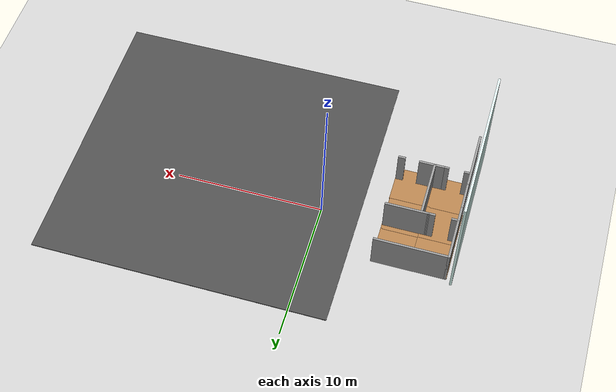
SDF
<sdf version="1.6">
 <world name="default">
  <model name="ground_plane">
   <static>1</static>
   <link name="link">
    <collision name="collision">
     <geometry><plane><normal>0 0 1</normal><size>100 100</size></plane></geometry>
     <surface>
      <contact><collide_bitmask>65535</collide_bitmask></contact>
      <friction><ode><mu>100</mu><mu2>50</mu2></ode></friction>
     </surface>
    </collision>
    <visual name="visual">
     <cast_shadows>0</cast_shadows>
     <geometry><plane><normal>0 0 1</normal><size>100 100</size></plane></geometry>
     <material>
      <script><uri>file://media/materials/scripts/gazebo.material</uri><name>Gazebo/Grey</name></script>
     </material>
    </visual>
   </link>
  </model>
  <model name="world_frame">
   <link name="Wall_140">
    <pose>-23.3896 0.057 0 0 -0 1.5708</pose>
    <visual name="Wall_140_Visual_0">
     <pose>-3.01696 0 1.25 0 -0 0</pose>
     <geometry><box><size>4.21607 0.15 2.5</size></box></geometry>
     <material>
      <script><uri>file://media/materials/scripts/gazebo.material</uri><name>Gazebo/Grey</name></script>
      <ambient>1 1 1 1</ambient>
      <shader type="pixel"/>
      <diffuse>0.7 0.7 0.7 1</diffuse>
      <specular>0.01 0.01 0.01 1</specular>
      <emissive>0 0 0 1</emissive>
     </material>
     <meta><layer>0</layer></meta>
    </visual>
    <visual name="Wall_140_Visual_2">
     <pose>3.07155 0 1.85 0 -0 0</pose>
     <geometry><box><size>4.1069 0.15 1.3</size></box></geometry>
     <material>
      <script><uri>file://media/materials/scripts/gazebo.material</uri><name>Gazebo/Grey</name></script>
      <ambient>1 1 1 1</ambient>
      <shader type="pixel"/>
      <diffuse>0.7 0.7 0.7 1</diffuse>
      <specular>0.01 0.01 0.01 1</specular>
      <emissive>0 0 0 1</emissive>
     </material>
     <meta><layer>0</layer></meta>
    </visual>
    <visual name="Wall_140_Visual_1">
     <pose>2.10804 0 0.6 0 -0 0</pose>
     <geometry><box><size>6.03393 0.15 1.2</size></box></geometry>
     <material>
      <script><uri>file://media/materials/scripts/gazebo.material</uri><name>Gazebo/Grey</name></script>
      <ambient>1 1 1 1</ambient>
      <shader type="pixel"/>
      <diffuse>0.7 0.7 0.7 1</diffuse>
      <specular>0.01 0.01 0.01 1</specular>
      <emissive>0 0 0 1</emissive>
     </material>
     <meta><layer>0</layer></meta>
    </visual>
    <visual name="Wall_140_Visual_3">
     <pose>0.054585 0 2.25 0 -0 0</pose>
     <geometry><box><size>1.92702 0.15 0.5</size></box></geometry>
     <material>
      <script><uri>file://media/materials/scripts/gazebo.material</uri><name>Gazebo/Grey</name></script>
      <ambient>1 1 1 1</ambient>
      <shader type="pixel"/>
      <diffuse>0.7 0.7 0.7 1</diffuse>
      <specular>0.01 0.01 0.01 1</specular>
      <emissive>0 0 0 1</emissive>
     </material>
     <meta><layer>0</layer></meta>
    </visual>
    <collision name="Wall_140_Collision_0">
     <pose>-3.01696 0 1.25 0 -0 0</pose>
     <geometry><box><size>4.21607 0.15 2.5</size></box></geometry>
     <surface>
      <friction>
       <ode><mu>1</mu><mu2>1</mu2><fdir1>0 0 0</fdir1><slip1>0</slip1><slip2>0</slip2></ode>
       <torsional>
        <coefficient>1</coefficient>
        <patch_radius>0</patch_radius>
        <surface_radius>0</surface_radius>
        <use_patch_radius>1</use_patch_radius>
        <ode><slip>0</slip></ode>
       </torsional>
      </friction>
      <bounce><restitution_coefficient>0</restitution_coefficient><threshold>1e+06</threshold></bounce>
      <contact>
       <collide_without_contact>0</collide_without_contact>
       <collide_without_contact_bitmask>1</collide_without_contact_bitmask>
       <collide_bitmask>1</collide_bitmask>
       <ode>
        <soft_cfm>0</soft_cfm>
        <soft_erp>0.2</soft_erp>
        <kp>1e+13</kp>
        <kd>1</kd>
        <max_vel>0.01</max_vel>
        <min_depth>0</min_depth>
       </ode>
       <bullet>
        <split_impulse>1</split_impulse>
        <split_impulse_penetration_threshold>-0.01</split_impulse_penetration_threshold>
        <soft_cfm>0</soft_cfm>
        <soft_erp>0.2</soft_erp>
        <kp>1e+13</kp>
        <kd>1</kd>
       </bullet>
      </contact>
     </surface>
    </collision>
    <collision name="Wall_140_Collision_1">
     <pose>2.10804 0 0.6 0 -0 0</pose>
     <geometry><box><size>6.03393 0.15 1.2</size></box></geometry>
     <surface>
      <friction>
       <ode><mu>1</mu><mu2>1</mu2><fdir1>0 0 0</fdir1><slip1>0</slip1><slip2>0</slip2></ode>
       <torsional>
        <coefficient>1</coefficient>
        <patch_radius>0</patch_radius>
        <surface_radius>0</surface_radius>
        <use_patch_radius>1</use_patch_radius>
        <ode><slip>0</slip></ode>
       </torsional>
      </friction>
      <bounce><restitution_coefficient>0</restitution_coefficient><threshold>1e+06</threshold></bounce>
      <contact>
       <collide_without_contact>0</collide_without_contact>
       <collide_without_contact_bitmask>1</collide_without_contact_bitmask>
       <collide_bitmask>1</collide_bitmask>
       <ode>
        <soft_cfm>0</soft_cfm>
        <soft_erp>0.2</soft_erp>
        <kp>1e+13</kp>
        <kd>1</kd>
        <max_vel>0.01</max_vel>
        <min_depth>0</min_depth>
       </ode>
       <bullet>
        <split_impulse>1</split_impulse>
        <split_impulse_penetration_threshold>-0.01</split_impulse_penetration_threshold>
        <soft_cfm>0</soft_cfm>
        <soft_erp>0.2</soft_erp>
        <kp>1e+13</kp>
        <kd>1</kd>
       </bullet>
      </contact>
     </surface>
    </collision>
    <collision name="Wall_140_Collision_2">
     <pose>3.07155 0 1.85 0 -0 0</pose>
     <geometry><box><size>4.1069 0.15 1.3</size></box></geometry>
     <surface>
      <friction>
       <ode><mu>1</mu><mu2>1</mu2><fdir1>0 0 0</fdir1><slip1>0</slip1><slip2>0</slip2></ode>
       <torsional>
        <coefficient>1</coefficient>
        <patch_radius>0</patch_radius>
        <surface_radius>0</surface_radius>
        <use_patch_radius>1</use_patch_radius>
        <ode><slip>0</slip></ode>
       </torsional>
      </friction>
      <bounce><restitution_coefficient>0</restitution_coefficient><threshold>1e+06</threshold></bounce>
      <contact>
       <collide_without_contact>0</collide_without_contact>
       <collide_without_contact_bitmask>1</collide_without_contact_bitmask>
       <collide_bitmask>1</collide_bitmask>
       <ode>
        <soft_cfm>0</soft_cfm>
        <soft_erp>0.2</soft_erp>
        <kp>1e+13</kp>
        <kd>1</kd>
        <max_vel>0.01</max_vel>
        <min_depth>0</min_depth>
       </ode>
       <bullet>
        <split_impulse>1</split_impulse>
        <split_impulse_penetration_threshold>-0.01</split_impulse_penetration_threshold>
        <soft_cfm>0</soft_cfm>
        <soft_erp>0.2</soft_erp>
        <kp>1e+13</kp>
        <kd>1</kd>
       </bullet>
      </contact>
     </surface>
    </collision>
    <collision name="Wall_140_Collision_3">
     <pose>0.054585 0 2.25 0 -0 0</pose>
     <geometry><box><size>1.92702 0.15 0.5</size></box></geometry>
     <surface>
      <friction>
       <ode><mu>1</mu><mu2>1</mu2><fdir1>0 0 0</fdir1><slip1>0</slip1><slip2>0</slip2></ode>
       <torsional>
        <coefficient>1</coefficient>
        <patch_radius>0</patch_radius>
        <surface_radius>0</surface_radius>
        <use_patch_radius>1</use_patch_radius>
        <ode><slip>0</slip></ode>
       </torsional>
      </friction>
      <bounce><restitution_coefficient>0</restitution_coefficient><threshold>1e+06</threshold></bounce>
      <contact>
       <collide_without_contact>0</collide_without_contact>
       <collide_without_contact_bitmask>1</collide_without_contact_bitmask>
       <collide_bitmask>1</collide_bitmask>
       <ode>
        <soft_cfm>0</soft_cfm>
        <soft_erp>0.2</soft_erp>
        <kp>1e+13</kp>
        <kd>1</kd>
        <max_vel>0.01</max_vel>
        <min_depth>0</min_depth>
       </ode>
       <bullet>
        <split_impulse>1</split_impulse>
        <split_impulse_penetration_threshold>-0.01</split_impulse_penetration_threshold>
        <soft_cfm>0</soft_cfm>
        <soft_erp>0.2</soft_erp>
        <kp>1e+13</kp>
        <kd>1</kd>
       </bullet>
      </contact>
     </surface>
    </collision>
   </link>
   <link name="Wall_141">
    <pose>-20.9646 5.107 0 0 -0 0</pose>
    <visual name="Wall_141_Visual">
     <pose>0 0 1.25 0 -0 0</pose>
     <geometry><box><size>5 0.15 2.5</size></box></geometry>
     <material>
      <script><uri>file://media/materials/scripts/gazebo.material</uri><name>Gazebo/Grey</name></script>
      <ambient>1 1 1 1</ambient>
      <shader type="pixel"/>
      <diffuse>0.7 0.7 0.7 1</diffuse>
      <specular>0.01 0.01 0.01 1</specular>
      <emissive>0 0 0 1</emissive>
     </material>
     <meta><layer>0</layer></meta>
    </visual>
    <collision name="Wall_141_Collision">
     <pose>0 0 1.25 0 -0 0</pose>
     <geometry><box><size>5 0.15 2.5</size></box></geometry>
     <surface>
      <friction>
       <ode><mu>1</mu><mu2>1</mu2><fdir1>0 0 0</fdir1><slip1>0</slip1><slip2>0</slip2></ode>
       <torsional>
        <coefficient>1</coefficient>
        <patch_radius>0</patch_radius>
        <surface_radius>0</surface_radius>
        <use_patch_radius>1</use_patch_radius>
        <ode><slip>0</slip></ode>
       </torsional>
      </friction>
      <bounce><restitution_coefficient>0</restitution_coefficient><threshold>1e+06</threshold></bounce>
      <contact>
       <collide_without_contact>0</collide_without_contact>
       <collide_without_contact_bitmask>1</collide_without_contact_bitmask>
       <collide_bitmask>1</collide_bitmask>
       <ode>
        <soft_cfm>0</soft_cfm>
        <soft_erp>0.2</soft_erp>
        <kp>1e+13</kp>
        <kd>1</kd>
        <max_vel>0.01</max_vel>
        <min_depth>0</min_depth>
       </ode>
       <bullet>
        <split_impulse>1</split_impulse>
        <split_impulse_penetration_threshold>-0.01</split_impulse_penetration_threshold>
        <soft_cfm>0</soft_cfm>
        <soft_erp>0.2</soft_erp>
        <kp>1e+13</kp>
        <kd>1</kd>
       </bullet>
      </contact>
     </surface>
    </collision>
   </link>
   <link name="Wall_164">
    <pose>-20.0168 2.18049 0 0 0 -8.4e-05</pose>
    <visual name="Wall_164_Visual">
     <pose>0 0 1.25 0 -0 0</pose>
     <geometry><box><size>2.97154 0.15 2.5</size></box></geometry>
     <material>
      <script><uri>file://media/materials/scripts/gazebo.material</uri><name>Gazebo/Grey</name></script>
      <ambient>1 1 1 1</ambient>
      <shader type="pixel"/>
      <diffuse>0.7 0.7 0.7 1</diffuse>
      <specular>0.01 0.01 0.01 1</specular>
      <emissive>0 0 0 1</emissive>
     </material>
     <meta><layer>0</layer></meta>
    </visual>
    <collision name="Wall_164_Collision">
     <pose>0 0 1.25 0 -0 0</pose>
     <geometry><box><size>2.97154 0.15 2.5</size></box></geometry>
     <surface>
      <friction>
       <ode><mu>1</mu><mu2>1</mu2><fdir1>0 0 0</fdir1><slip1>0</slip1><slip2>0</slip2></ode>
       <torsional>
        <coefficient>1</coefficient>
        <patch_radius>0</patch_radius>
        <surface_radius>0</surface_radius>
        <use_patch_radius>1</use_patch_radius>
        <ode><slip>0</slip></ode>
       </torsional>
      </friction>
      <bounce><restitution_coefficient>0</restitution_coefficient><threshold>1e+06</threshold></bounce>
      <contact>
       <collide_without_contact>0</collide_without_contact>
       <collide_without_contact_bitmask>1</collide_without_contact_bitmask>
       <collide_bitmask>1</collide_bitmask>
       <ode>
        <soft_cfm>0</soft_cfm>
        <soft_erp>0.2</soft_erp>
        <kp>1e+13</kp>
        <kd>1</kd>
        <max_vel>0.01</max_vel>
        <min_depth>0</min_depth>
       </ode>
       <bullet>
        <split_impulse>1</split_impulse>
        <split_impulse_penetration_threshold>-0.01</split_impulse_penetration_threshold>
        <soft_cfm>0</soft_cfm>
        <soft_erp>0.2</soft_erp>
        <kp>1e+13</kp>
        <kd>1</kd>
       </bullet>
      </contact>
     </surface>
    </collision>
   </link>
   <link name="Wall_174">
    <pose>-20.7716 -1.813 0 0 -0 0</pose>
    <inertial>
     <inertia><ixx>0</ixx><ixy>0</ixy><ixz>0</ixz><iyy>0</iyy><iyz>0</iyz><izz>0</izz></inertia>
     <mass>0</mass>
    </inertial>
    <visual name="Wall_174_Visual">
     <pose>0 0 1.25 0 -0 0</pose>
     <geometry><box><size>1.72154 0.15 2.5</size></box></geometry>
     <material>
      <script><uri>file://media/materials/scripts/gazebo.material</uri><name>Gazebo/Grey</name></script>
      <ambient>1 1 1 1</ambient>
      <shader type="pixel"/>
      <diffuse>0.7 0.7 0.7 1</diffuse>
      <specular>0.01 0.01 0.01 1</specular>
      <emissive>0 0 0 1</emissive>
     </material>
     <meta><layer>0</layer></meta>
    </visual>
    <collision name="Wall_174_Collision">
     <pose>0 0 1.25 0 -0 0</pose>
     <geometry><box><size>1.72154 0.15 2.5</size></box></geometry>
     <surface>
      <friction>
       <ode><mu>1</mu><mu2>1</mu2><fdir1>0 0 0</fdir1><slip1>0</slip1><slip2>0</slip2></ode>
       <torsional>
        <coefficient>1</coefficient>
        <patch_radius>0</patch_radius>
        <surface_radius>0</surface_radius>
        <use_patch_radius>1</use_patch_radius>
        <ode><slip>0</slip></ode>
       </torsional>
      </friction>
      <bounce><restitution_coefficient>0</restitution_coefficient><threshold>1e+06</threshold></bounce>
      <contact>
       <collide_without_contact>0</collide_without_contact>
       <collide_without_contact_bitmask>1</collide_without_contact_bitmask>
       <collide_bitmask>1</collide_bitmask>
       <ode>
        <soft_cfm>0</soft_cfm>
        <soft_erp>0.2</soft_erp>
        <kp>1e+13</kp>
        <kd>1</kd>
        <max_vel>0.01</max_vel>
        <min_depth>0</min_depth>
       </ode>
       <bullet>
        <split_impulse>1</split_impulse>
        <split_impulse_penetration_threshold>-0.01</split_impulse_penetration_threshold>
        <soft_cfm>0</soft_cfm>
        <soft_erp>0.2</soft_erp>
        <kp>1e+13</kp>
        <kd>1</kd>
       </bullet>
      </contact>
     </surface>
    </collision>
   </link>
   <link name="Wall_176">
    <pose>-18.7419 -1.81759 0 0 -0 3.14159</pose>
    <visual name="Wall_176_Visual">
     <pose>0 0 1.25 0 -0 0</pose>
     <geometry><box><size>0.5 0.15 2.5</size></box></geometry>
     <material>
      <script><uri>file://media/materials/scripts/gazebo.material</uri><name>Gazebo/Grey</name></script>
      <ambient>1 1 1 1</ambient>
      <shader type="pixel"/>
      <diffuse>0.7 0.7 0.7 1</diffuse>
      <specular>0.01 0.01 0.01 1</specular>
      <emissive>0 0 0 1</emissive>
     </material>
     <meta><layer>0</layer></meta>
    </visual>
    <collision name="Wall_176_Collision">
     <pose>0 0 1.25 0 -0 0</pose>
     <geometry><box><size>0.5 0.15 2.5</size></box></geometry>
     <surface>
      <friction>
       <ode><mu>1</mu><mu2>1</mu2><fdir1>0 0 0</fdir1><slip1>0</slip1><slip2>0</slip2></ode>
       <torsional>
        <coefficient>1</coefficient>
        <patch_radius>0</patch_radius>
        <surface_radius>0</surface_radius>
        <use_patch_radius>1</use_patch_radius>
        <ode><slip>0</slip></ode>
       </torsional>
      </friction>
      <bounce><restitution_coefficient>0</restitution_coefficient><threshold>1e+06</threshold></bounce>
      <contact>
       <collide_without_contact>0</collide_without_contact>
       <collide_without_contact_bitmask>1</collide_without_contact_bitmask>
       <collide_bitmask>1</collide_bitmask>
       <ode>
        <soft_cfm>0</soft_cfm>
        <soft_erp>0.2</soft_erp>
        <kp>1e+13</kp>
        <kd>1</kd>
        <max_vel>0.01</max_vel>
        <min_depth>0</min_depth>
       </ode>
       <bullet>
        <split_impulse>1</split_impulse>
        <split_impulse_penetration_threshold>-0.01</split_impulse_penetration_threshold>
        <soft_cfm>0</soft_cfm>
        <soft_erp>0.2</soft_erp>
        <kp>1e+13</kp>
        <kd>1</kd>
       </bullet>
      </contact>
     </surface>
    </collision>
   </link>
   <link name="Wall_178">
    <pose>-20.9677 0.173458 0 0 0 -1.5708</pose>
    <visual name="Wall_178_Visual">
     <pose>0 0 1.25 0 -0 0</pose>
     <geometry><box><size>4 0.15 2.5</size></box></geometry>
     <material>
      <script><uri>file://media/materials/scripts/gazebo.material</uri><name>Gazebo/Grey</name></script>
      <ambient>1 1 1 1</ambient>
      <shader type="pixel"/>
      <diffuse>0.7 0.7 0.7 1</diffuse>
      <specular>0.01 0.01 0.01 1</specular>
      <emissive>0 0 0 1</emissive>
     </material>
     <meta><layer>0</layer></meta>
    </visual>
    <collision name="Wall_178_Collision">
     <pose>0 0 1.25 0 -0 0</pose>
     <geometry><box><size>4 0.15 2.5</size></box></geometry>
     <surface>
      <friction>
       <ode><mu>1</mu><mu2>1</mu2><fdir1>0 0 0</fdir1><slip1>0</slip1><slip2>0</slip2></ode>
       <torsional>
        <coefficient>1</coefficient>
        <patch_radius>0</patch_radius>
        <surface_radius>0</surface_radius>
        <use_patch_radius>1</use_patch_radius>
        <ode><slip>0</slip></ode>
       </torsional>
      </friction>
      <bounce><restitution_coefficient>0</restitution_coefficient><threshold>1e+06</threshold></bounce>
      <contact>
       <collide_without_contact>0</collide_without_contact>
       <collide_without_contact_bitmask>1</collide_without_contact_bitmask>
       <collide_bitmask>1</collide_bitmask>
       <ode>
        <soft_cfm>0</soft_cfm>
        <soft_erp>0.2</soft_erp>
        <kp>1e+13</kp>
        <kd>1</kd>
        <max_vel>0.01</max_vel>
        <min_depth>0</min_depth>
       </ode>
       <bullet>
        <split_impulse>1</split_impulse>
        <split_impulse_penetration_threshold>-0.01</split_impulse_penetration_threshold>
        <soft_cfm>0</soft_cfm>
        <soft_erp>0.2</soft_erp>
        <kp>1e+13</kp>
        <kd>1</kd>
       </bullet>
      </contact>
     </surface>
    </collision>
   </link>
   <link name="Wall_180">
    <pose>-21.6168 2.18049 0 0 0 -3.14097</pose>
    <visual name="Wall_180_Visual">
     <pose>0 0 1.25 0 -0 0</pose>
     <geometry><box><size>0.528518 0.15 2.5</size></box></geometry>
     <material>
      <script><uri>file://media/materials/scripts/gazebo.material</uri><name>Gazebo/Grey</name></script>
      <ambient>1 1 1 1</ambient>
      <shader type="pixel"/>
      <diffuse>0.7 0.7 0.7 1</diffuse>
      <specular>0.01 0.01 0.01 1</specular>
      <emissive>0 0 0 1</emissive>
     </material>
     <meta><layer>0</layer></meta>
    </visual>
    <collision name="Wall_180_Collision">
     <pose>0 0 1.25 0 -0 0</pose>
     <geometry><box><size>0.528518 0.15 2.5</size></box></geometry>
     <surface>
      <friction>
       <ode><mu>1</mu><mu2>1</mu2><fdir1>0 0 0</fdir1><slip1>0</slip1><slip2>0</slip2></ode>
       <torsional>
        <coefficient>1</coefficient>
        <patch_radius>0</patch_radius>
        <surface_radius>0</surface_radius>
        <use_patch_radius>1</use_patch_radius>
        <ode><slip>0</slip></ode>
       </torsional>
      </friction>
      <bounce><restitution_coefficient>0</restitution_coefficient><threshold>1e+06</threshold></bounce>
      <contact>
       <collide_without_contact>0</collide_without_contact>
       <collide_without_contact_bitmask>1</collide_without_contact_bitmask>
       <collide_bitmask>1</collide_bitmask>
       <ode>
        <soft_cfm>0</soft_cfm>
        <soft_erp>0.2</soft_erp>
        <kp>1e+13</kp>
        <kd>1</kd>
        <max_vel>0.01</max_vel>
        <min_depth>0</min_depth>
       </ode>
       <bullet>
        <split_impulse>1</split_impulse>
        <split_impulse_penetration_threshold>-0.01</split_impulse_penetration_threshold>
        <soft_cfm>0</soft_cfm>
        <soft_erp>0.2</soft_erp>
        <kp>1e+13</kp>
        <kd>1</kd>
       </bullet>
      </contact>
     </surface>
    </collision>
   </link>
   <link name="Wall_182">
    <pose>-23.1724 2.16735 0 0 -0 0</pose>
    <visual name="Wall_182_Visual">
     <pose>0 0 1.25 0 -0 0</pose>
     <geometry><box><size>0.5 0.15 2.5</size></box></geometry>
     <material>
      <script><uri>file://media/materials/scripts/gazebo.material</uri><name>Gazebo/Grey</name></script>
      <ambient>1 1 1 1</ambient>
      <shader type="pixel"/>
      <diffuse>0.7 0.7 0.7 1</diffuse>
      <specular>0.01 0.01 0.01 1</specular>
      <emissive>0 0 0 1</emissive>
     </material>
     <meta><layer>0</layer></meta>
    </visual>
    <collision name="Wall_182_Collision">
     <pose>0 0 1.25 0 -0 0</pose>
     <geometry><box><size>0.5 0.15 2.5</size></box></geometry>
     <surface>
      <friction>
       <ode><mu>1</mu><mu2>1</mu2><fdir1>0 0 0</fdir1><slip1>0</slip1><slip2>0</slip2></ode>
       <torsional>
        <coefficient>1</coefficient>
        <patch_radius>0</patch_radius>
        <surface_radius>0</surface_radius>
        <use_patch_radius>1</use_patch_radius>
        <ode><slip>0</slip></ode>
       </torsional>
      </friction>
      <bounce><restitution_coefficient>0</restitution_coefficient><threshold>1e+06</threshold></bounce>
      <contact>
       <collide_without_contact>0</collide_without_contact>
       <collide_without_contact_bitmask>1</collide_without_contact_bitmask>
       <collide_bitmask>1</collide_bitmask>
       <ode>
        <soft_cfm>0</soft_cfm>
        <soft_erp>0.2</soft_erp>
        <kp>1e+13</kp>
        <kd>1</kd>
        <max_vel>0.01</max_vel>
        <min_depth>0</min_depth>
       </ode>
       <bullet>
        <split_impulse>1</split_impulse>
        <split_impulse_penetration_threshold>-0.01</split_impulse_penetration_threshold>
        <soft_cfm>0</soft_cfm>
        <soft_erp>0.2</soft_erp>
        <kp>1e+13</kp>
        <kd>1</kd>
       </bullet>
      </contact>
     </surface>
    </collision>
   </link>
   <link name="Wall_186">
    <pose>-21.6976 -1.815 0 0 -0 0</pose>
    <visual name="Wall_186_Visual">
     <pose>0 0 1.25 0 -0 0</pose>
     <geometry><box><size>0.5 0.15 2.5</size></box></geometry>
     <material>
      <script><uri>file://media/materials/scripts/gazebo.material</uri><name>Gazebo/Grey</name></script>
      <ambient>1 1 1 1</ambient>
      <shader type="pixel"/>
      <diffuse>0.7 0.7 0.7 1</diffuse>
      <specular>0.01 0.01 0.01 1</specular>
      <emissive>0 0 0 1</emissive>
     </material>
     <meta><layer>0</layer></meta>
    </visual>
    <collision name="Wall_186_Collision">
     <pose>0 0 1.25 0 -0 0</pose>
     <geometry><box><size>0.5 0.15 2.5</size></box></geometry>
     <surface>
      <friction>
       <ode><mu>1</mu><mu2>1</mu2><fdir1>0 0 0</fdir1><slip1>0</slip1><slip2>0</slip2></ode>
       <torsional>
        <coefficient>1</coefficient>
        <patch_radius>0</patch_radius>
        <surface_radius>0</surface_radius>
        <use_patch_radius>1</use_patch_radius>
        <ode><slip>0</slip></ode>
       </torsional>
      </friction>
      <bounce><restitution_coefficient>0</restitution_coefficient><threshold>1e+06</threshold></bounce>
      <contact>
       <collide_without_contact>0</collide_without_contact>
       <collide_without_contact_bitmask>1</collide_without_contact_bitmask>
       <collide_bitmask>1</collide_bitmask>
       <ode>
        <soft_cfm>0</soft_cfm>
        <soft_erp>0.2</soft_erp>
        <kp>1e+13</kp>
        <kd>1</kd>
        <max_vel>0.01</max_vel>
        <min_depth>0</min_depth>
       </ode>
       <bullet>
        <split_impulse>1</split_impulse>
        <split_impulse_penetration_threshold>-0.01</split_impulse_penetration_threshold>
        <soft_cfm>0</soft_cfm>
        <soft_erp>0.2</soft_erp>
        <kp>1e+13</kp>
        <kd>1</kd>
       </bullet>
      </contact>
     </surface>
    </collision>
   </link>
   <link name="Wall_191">
    <pose>-23.1882 -1.79885 0 0 -0 0</pose>
    <visual name="Wall_191_Visual">
     <pose>0 0 1.25 0 -0 0</pose>
     <geometry><box><size>0.5 0.15 2.5</size></box></geometry>
     <material>
      <script><uri>file://media/materials/scripts/gazebo.material</uri><name>Gazebo/Grey</name></script>
      <ambient>1 1 1 1</ambient>
      <shader type="pixel"/>
      <diffuse>0.7 0.7 0.7 1</diffuse>
      <specular>0.01 0.01 0.01 1</specular>
      <emissive>0 0 0 1</emissive>
     </material>
     <meta><layer>0</layer></meta>
    </visual>
    <collision name="Wall_191_Collision">
     <pose>0 0 1.25 0 -0 0</pose>
     <geometry><box><size>0.5 0.15 2.5</size></box></geometry>
     <surface>
      <friction>
       <ode><mu>1</mu><mu2>1</mu2><fdir1>0 0 0</fdir1><slip1>0</slip1><slip2>0</slip2></ode>
       <torsional>
        <coefficient>1</coefficient>
        <patch_radius>0</patch_radius>
        <surface_radius>0</surface_radius>
        <use_patch_radius>1</use_patch_radius>
        <ode><slip>0</slip></ode>
       </torsional>
      </friction>
      <bounce><restitution_coefficient>0</restitution_coefficient><threshold>1e+06</threshold></bounce>
      <contact>
       <collide_without_contact>0</collide_without_contact>
       <collide_without_contact_bitmask>1</collide_without_contact_bitmask>
       <collide_bitmask>1</collide_bitmask>
       <ode>
        <soft_cfm>0</soft_cfm>
        <soft_erp>0.2</soft_erp>
        <kp>1e+13</kp>
        <kd>1</kd>
        <max_vel>0.01</max_vel>
        <min_depth>0</min_depth>
       </ode>
       <bullet>
        <split_impulse>1</split_impulse>
        <split_impulse_penetration_threshold>-0.01</split_impulse_penetration_threshold>
        <soft_cfm>0</soft_cfm>
        <soft_erp>0.2</soft_erp>
        <kp>1e+13</kp>
        <kd>1</kd>
       </bullet>
      </contact>
     </surface>
    </collision>
   </link>
   <link name="Wall_209">
    <pose>-23.8206 0 0 0 0 -1.5708</pose>
    <visual name="Wall_209_Visual">
     <pose>0 0 4 0 -0 0</pose>
     <geometry><box><size>11 0.15 8</size></box></geometry>
     <material>
      <script><uri>file://media/materials/scripts/gazebo.material</uri><name>Gazebo/Grey</name></script>
      <ambient>0.866667 1 0.972549 1</ambient>
      <shader type="pixel"/>
      <diffuse>0.7 0.7 0.7 1</diffuse>
      <specular>0.01 0.01 0.01 1</specular>
      <emissive>0 0 0 1</emissive>
     </material>
     <meta><layer>0</layer></meta>
    </visual>
    <collision name="Wall_209_Collision">
     <pose>0 0 4 0 -0 0</pose>
     <geometry><box><size>11 0.15 8</size></box></geometry>
     <surface>
      <friction>
       <ode><mu>1</mu><mu2>1</mu2><fdir1>0 0 0</fdir1><slip1>0</slip1><slip2>0</slip2></ode>
       <torsional>
        <coefficient>1</coefficient>
        <patch_radius>0</patch_radius>
        <surface_radius>0</surface_radius>
        <use_patch_radius>1</use_patch_radius>
        <ode><slip>0</slip></ode>
       </torsional>
      </friction>
      <bounce><restitution_coefficient>0</restitution_coefficient><threshold>1e+06</threshold></bounce>
      <contact>
       <collide_without_contact>0</collide_without_contact>
       <collide_without_contact_bitmask>1</collide_without_contact_bitmask>
       <collide_bitmask>1</collide_bitmask>
       <ode>
        <soft_cfm>0</soft_cfm>
        <soft_erp>0.2</soft_erp>
        <kp>1e+13</kp>
        <kd>1</kd>
        <max_vel>0.01</max_vel>
        <min_depth>0</min_depth>
       </ode>
       <bullet>
        <split_impulse>1</split_impulse>
        <split_impulse_penetration_threshold>-0.01</split_impulse_penetration_threshold>
        <soft_cfm>0</soft_cfm>
        <soft_erp>0.2</soft_erp>
        <kp>1e+13</kp>
        <kd>1</kd>
       </bullet>
      </contact>
     </surface>
    </collision>
   </link>
   <link name="Wall_225">
    <pose>-22.2466 3.84919 0 0 -0 1.5708</pose>
    <visual name="Wall_225_Visual">
     <pose>0 0 0.0775 0 -0 0</pose>
     <geometry><box><size>2.625 2.5 0.155</size></box></geometry>
     <material>
      <script><uri>file://media/materials/scripts/gazebo.material</uri><name>Gazebo/Wood</name></script>
      <ambient>1 1 1 1</ambient>
      <shader type="pixel"/>
      <diffuse>1 1 1 1</diffuse>
      <specular>0.2 0.2 0.2 1</specular>
      <emissive>0 0 0 1</emissive>
     </material>
     <meta><layer>0</layer></meta>
    </visual>
    <collision name="Wall_225_Collision">
     <pose>0 0 0.0775 0 -0 0</pose>
     <geometry><box><size>2.625 2.5 0.155</size></box></geometry>
     <surface>
      <friction>
       <ode><mu>1</mu><mu2>1</mu2><fdir1>0 0 0</fdir1><slip1>0</slip1><slip2>0</slip2></ode>
       <torsional>
        <coefficient>1</coefficient>
        <patch_radius>0</patch_radius>
        <surface_radius>0</surface_radius>
        <use_patch_radius>1</use_patch_radius>
        <ode><slip>0</slip></ode>
       </torsional>
      </friction>
      <bounce><restitution_coefficient>0</restitution_coefficient><threshold>1e+06</threshold></bounce>
      <contact>
       <collide_without_contact>0</collide_without_contact>
       <collide_without_contact_bitmask>1</collide_without_contact_bitmask>
       <collide_bitmask>1</collide_bitmask>
       <ode>
        <soft_cfm>0</soft_cfm>
        <soft_erp>0.2</soft_erp>
        <kp>1e+13</kp>
        <kd>1</kd>
        <max_vel>0.01</max_vel>
        <min_depth>0</min_depth>
       </ode>
       <bullet>
        <split_impulse>1</split_impulse>
        <split_impulse_penetration_threshold>-0.01</split_impulse_penetration_threshold>
        <soft_cfm>0</soft_cfm>
        <soft_erp>0.2</soft_erp>
        <kp>1e+13</kp>
        <kd>1</kd>
       </bullet>
      </contact>
     </surface>
    </collision>
   </link>
   <link name="Wall_227">
    <pose>-19.7561 3.83536 0 0 0 -1.5708</pose>
    <visual name="Wall_227_Visual">
     <pose>0 0 0.0775 0 -0 0</pose>
     <geometry><box><size>2.625 2.5 0.155</size></box></geometry>
     <material>
      <script><uri>file://media/materials/scripts/gazebo.material</uri><name>Gazebo/Wood</name></script>
      <ambient>1 1 1 1</ambient>
      <shader type="pixel"/>
      <diffuse>1 1 1 1</diffuse>
      <specular>0.2 0.2 0.2 1</specular>
      <emissive>0 0 0 1</emissive>
     </material>
     <meta><layer>0</layer></meta>
    </visual>
    <collision name="Wall_227_Collision">
     <pose>0 0 0.0775 0 -0 0</pose>
     <geometry><box><size>2.625 2.5 0.155</size></box></geometry>
     <surface>
      <friction>
       <ode><mu>1</mu><mu2>1</mu2><fdir1>0 0 0</fdir1><slip1>0</slip1><slip2>0</slip2></ode>
       <torsional>
        <coefficient>1</coefficient>
        <patch_radius>0</patch_radius>
        <surface_radius>0</surface_radius>
        <use_patch_radius>1</use_patch_radius>
        <ode><slip>0</slip></ode>
       </torsional>
      </friction>
      <bounce><restitution_coefficient>0</restitution_coefficient><threshold>1e+06</threshold></bounce>
      <contact>
       <collide_without_contact>0</collide_without_contact>
       <collide_without_contact_bitmask>1</collide_without_contact_bitmask>
       <collide_bitmask>1</collide_bitmask>
       <ode>
        <soft_cfm>0</soft_cfm>
        <soft_erp>0.2</soft_erp>
        <kp>1e+13</kp>
        <kd>1</kd>
        <max_vel>0.01</max_vel>
        <min_depth>0</min_depth>
       </ode>
       <bullet>
        <split_impulse>1</split_impulse>
        <split_impulse_penetration_threshold>-0.01</split_impulse_penetration_threshold>
        <soft_cfm>0</soft_cfm>
        <soft_erp>0.2</soft_erp>
        <kp>1e+13</kp>
        <kd>1</kd>
       </bullet>
      </contact>
     </surface>
    </collision>
   </link>
   <link name="Wall_231">
    <pose>-19.7567 1.26088 0 0 0 -1.5708</pose>
    <visual name="Wall_231_Visual">
     <pose>0 0 0.0775 0 -0 0</pose>
     <geometry><box><size>2.625 2.5 0.155</size></box></geometry>
     <material>
      <script><uri>file://media/materials/scripts/gazebo.material</uri><name>Gazebo/Wood</name></script>
      <ambient>1 1 1 1</ambient>
      <shader type="pixel"/>
      <diffuse>1 1 1 1</diffuse>
      <specular>0.2 0.2 0.2 1</specular>
      <emissive>0 0 0 1</emissive>
     </material>
     <meta><layer>0</layer></meta>
    </visual>
    <collision name="Wall_231_Collision">
     <pose>0 0 0.0775 0 -0 0</pose>
     <geometry><box><size>2.625 2.5 0.155</size></box></geometry>
     <surface>
      <friction>
       <ode><mu>1</mu><mu2>1</mu2><fdir1>0 0 0</fdir1><slip1>0</slip1><slip2>0</slip2></ode>
       <torsional>
        <coefficient>1</coefficient>
        <patch_radius>0</patch_radius>
        <surface_radius>0</surface_radius>
        <use_patch_radius>1</use_patch_radius>
        <ode><slip>0</slip></ode>
       </torsional>
      </friction>
      <bounce><restitution_coefficient>0</restitution_coefficient><threshold>1e+06</threshold></bounce>
      <contact>
       <collide_without_contact>0</collide_without_contact>
       <collide_without_contact_bitmask>1</collide_without_contact_bitmask>
       <collide_bitmask>1</collide_bitmask>
       <ode>
        <soft_cfm>0</soft_cfm>
        <soft_erp>0.2</soft_erp>
        <kp>1e+13</kp>
        <kd>1</kd>
        <max_vel>0.01</max_vel>
        <min_depth>0</min_depth>
       </ode>
       <bullet>
        <split_impulse>1</split_impulse>
        <split_impulse_penetration_threshold>-0.01</split_impulse_penetration_threshold>
        <soft_cfm>0</soft_cfm>
        <soft_erp>0.2</soft_erp>
        <kp>1e+13</kp>
        <kd>1</kd>
       </bullet>
      </contact>
     </surface>
    </collision>
   </link>
   <link name="Wall_233">
    <pose>-22.1659 -1.3371 0 0 0 -1.5708</pose>
    <visual name="Wall_233_Visual">
     <pose>0 0 0.0775 0 -0 0</pose>
     <geometry><box><size>2.625 2.5 0.155</size></box></geometry>
     <material>
      <script><uri>file://media/materials/scripts/gazebo.material</uri><name>Gazebo/Wood</name></script>
      <ambient>1 1 1 1</ambient>
      <shader type="pixel"/>
      <diffuse>1 1 1 1</diffuse>
      <specular>0.2 0.2 0.2 1</specular>
      <emissive>0 0 0 1</emissive>
     </material>
     <meta><layer>0</layer></meta>
    </visual>
    <collision name="Wall_233_Collision">
     <pose>0 0 0.0775 0 -0 0</pose>
     <geometry><box><size>2.625 2.5 0.155</size></box></geometry>
     <surface>
      <friction>
       <ode><mu>1</mu><mu2>1</mu2><fdir1>0 0 0</fdir1><slip1>0</slip1><slip2>0</slip2></ode>
       <torsional>
        <coefficient>1</coefficient>
        <patch_radius>0</patch_radius>
        <surface_radius>0</surface_radius>
        <use_patch_radius>1</use_patch_radius>
        <ode><slip>0</slip></ode>
       </torsional>
      </friction>
      <bounce><restitution_coefficient>0</restitution_coefficient><threshold>1e+06</threshold></bounce>
      <contact>
       <collide_without_contact>0</collide_without_contact>
       <collide_without_contact_bitmask>1</collide_without_contact_bitmask>
       <collide_bitmask>1</collide_bitmask>
       <ode>
        <soft_cfm>0</soft_cfm>
        <soft_erp>0.2</soft_erp>
        <kp>1e+13</kp>
        <kd>1</kd>
        <max_vel>0.01</max_vel>
        <min_depth>0</min_depth>
       </ode>
       <bullet>
        <split_impulse>1</split_impulse>
        <split_impulse_penetration_threshold>-0.01</split_impulse_penetration_threshold>
        <soft_cfm>0</soft_cfm>
        <soft_erp>0.2</soft_erp>
        <kp>1e+13</kp>
        <kd>1</kd>
       </bullet>
      </contact>
     </surface>
    </collision>
   </link>
   <link name="Wall_235">
    <pose>-22.2519 1.24308 0 0 0 -1.5708</pose>
    <visual name="Wall_235_Visual">
     <pose>0 0 0.0775 0 -0 0</pose>
     <geometry><box><size>2.625 2.5 0.155</size></box></geometry>
     <material>
      <script><uri>file://media/materials/scripts/gazebo.material</uri><name>Gazebo/Wood</name></script>
      <ambient>1 1 1 1</ambient>
      <shader type="pixel"/>
      <diffuse>1 1 1 1</diffuse>
      <specular>0.2 0.2 0.2 1</specular>
      <emissive>0 0 0 1</emissive>
     </material>
     <meta><layer>0</layer></meta>
    </visual>
    <collision name="Wall_235_Collision">
     <pose>0 0 0.0775 0 -0 0</pose>
     <geometry><box><size>2.625 2.5 0.155</size></box></geometry>
     <surface>
      <friction>
       <ode><mu>1</mu><mu2>1</mu2><fdir1>0 0 0</fdir1><slip1>0</slip1><slip2>0</slip2></ode>
       <torsional>
        <coefficient>1</coefficient>
        <patch_radius>0</patch_radius>
        <surface_radius>0</surface_radius>
        <use_patch_radius>1</use_patch_radius>
        <ode><slip>0</slip></ode>
       </torsional>
      </friction>
      <bounce><restitution_coefficient>0</restitution_coefficient><threshold>1e+06</threshold></bounce>
      <contact>
       <collide_without_contact>0</collide_without_contact>
       <collide_without_contact_bitmask>1</collide_without_contact_bitmask>
       <collide_bitmask>1</collide_bitmask>
       <ode>
        <soft_cfm>0</soft_cfm>
        <soft_erp>0.2</soft_erp>
        <kp>1e+13</kp>
        <kd>1</kd>
        <max_vel>0.01</max_vel>
        <min_depth>0</min_depth>
       </ode>
       <bullet>
        <split_impulse>1</split_impulse>
        <split_impulse_penetration_threshold>-0.01</split_impulse_penetration_threshold>
        <soft_cfm>0</soft_cfm>
        <soft_erp>0.2</soft_erp>
        <kp>1e+13</kp>
        <kd>1</kd>
       </bullet>
      </contact>
     </surface>
    </collision>
   </link>
   <link name="Wall_237">
    <pose>-19.7231 -1.35038 0 0 0 -1.5708</pose>
    <visual name="Wall_237_Visual">
     <pose>0 0 0.0775 0 -0 0</pose>
     <geometry><box><size>2.625 2.5 0.155</size></box></geometry>
     <material>
      <script><uri>file://media/materials/scripts/gazebo.material</uri><name>Gazebo/Wood</name></script>
      <ambient>1 1 1 1</ambient>
      <shader type="pixel"/>
      <diffuse>1 1 1 1</diffuse>
      <specular>0.2 0.2 0.2 1</specular>
      <emissive>0 0 0 1</emissive>
     </material>
     <meta><layer>0</layer></meta>
    </visual>
    <collision name="Wall_237_Collision">
     <pose>0 0 0.0775 0 -0 0</pose>
     <geometry><box><size>2.625 2.5 0.155</size></box></geometry>
     <surface>
      <friction>
       <ode><mu>1</mu><mu2>1</mu2><fdir1>0 0 0</fdir1><slip1>0</slip1><slip2>0</slip2></ode>
       <torsional>
        <coefficient>1</coefficient>
        <patch_radius>0</patch_radius>
        <surface_radius>0</surface_radius>
        <use_patch_radius>1</use_patch_radius>
        <ode><slip>0</slip></ode>
       </torsional>
      </friction>
      <bounce><restitution_coefficient>0</restitution_coefficient><threshold>1e+06</threshold></bounce>
      <contact>
       <collide_without_contact>0</collide_without_contact>
       <collide_without_contact_bitmask>1</collide_without_contact_bitmask>
       <collide_bitmask>1</collide_bitmask>
       <ode>
        <soft_cfm>0</soft_cfm>
        <soft_erp>0.2</soft_erp>
        <kp>1e+13</kp>
        <kd>1</kd>
        <max_vel>0.01</max_vel>
        <min_depth>0</min_depth>
       </ode>
       <bullet>
        <split_impulse>1</split_impulse>
        <split_impulse_penetration_threshold>-0.01</split_impulse_penetration_threshold>
        <soft_cfm>0</soft_cfm>
        <soft_erp>0.2</soft_erp>
        <kp>1e+13</kp>
        <kd>1</kd>
       </bullet>
      </contact>
     </surface>
    </collision>
   </link>
   <static>1</static>
   <pose>14.3624 -2.13506 0 0 -0 0</pose>
  </model>
  <model name="asphalt_plane">
   <static>1</static>
   <link name="link">
    <collision name="collision"><geometry><box><size>20 20 0.1</size></box></geometry></collision>
    <visual name="visual">
     <cast_shadows>0</cast_shadows>
     <geometry><box><size>20 20 0.1</size></box></geometry>
     <material>
      <script>
       <uri>model://asphalt_plane/materials/scripts</uri>
       <uri>model://asphalt_plane/materials/textures</uri>
       <name>vrc/asphalt</name>
      </script>
     </material>
    </visual>
   </link>
   <pose>7.45828 -1.78814 -0.021157 0 -0 0</pose>
  </model>
 </world>
</sdf>
